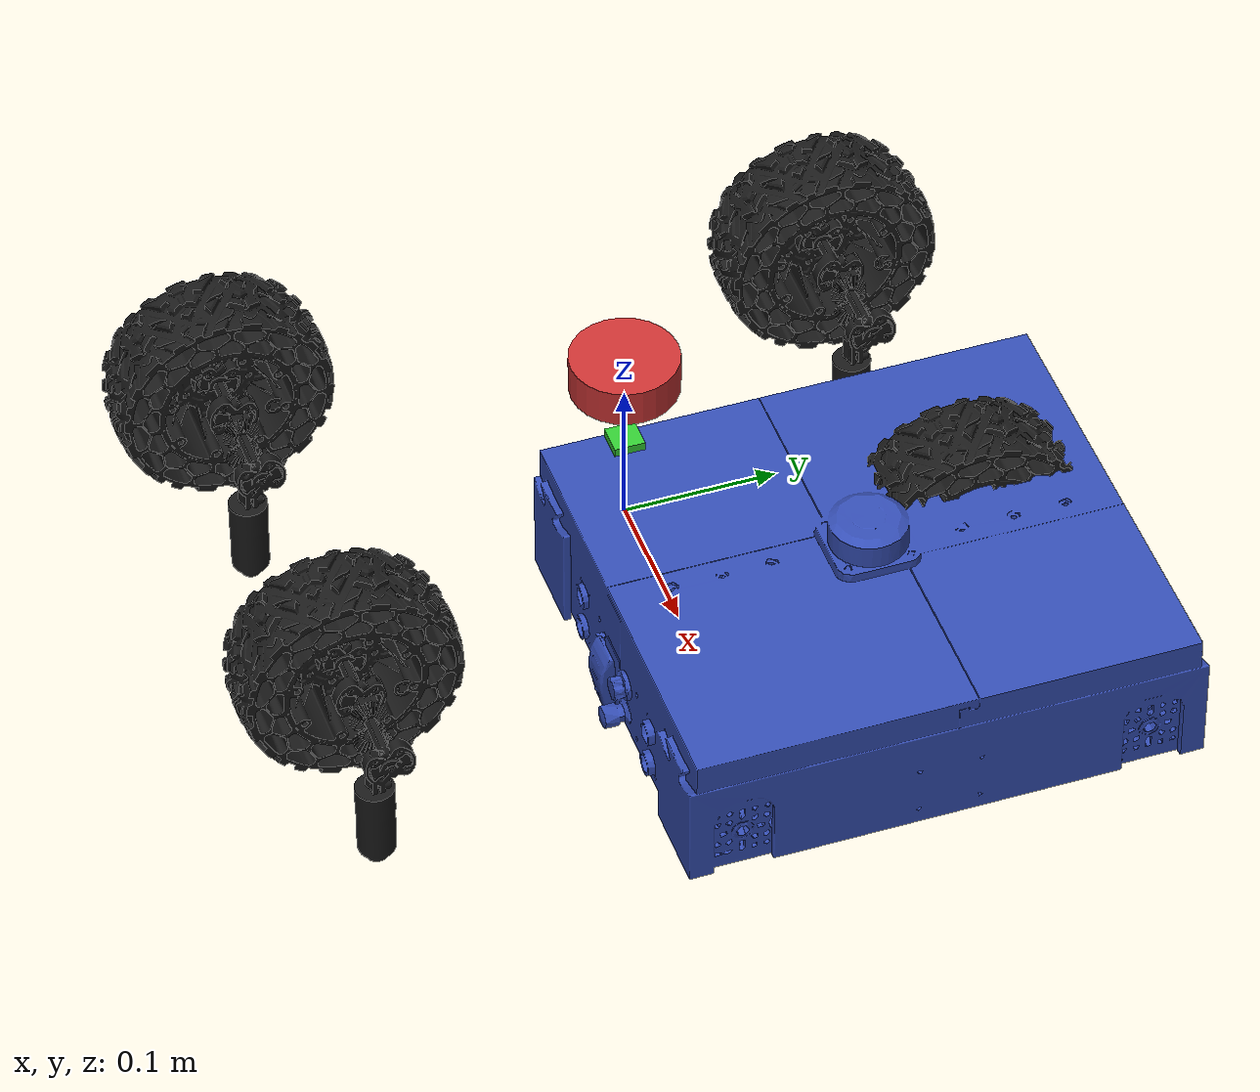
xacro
<?xml version="1.0"?>
<robot name="star" xmlns:xacro="http://www.ros.org/wiki/xacro">

  <!-- Properties                                                          -->
  <xacro:property name="chassis_length" value="0.346"/>
  <xacro:property name="chassis_width" value="0.292"/>
  <xacro:property name="chassis_height" value="0.118"/>
  <xacro:property name="chassis_mass" value="4.2"/>

  <xacro:property name="wheel_radius" value="0.072"/>
  <xacro:property name="wheel_width" value="0.052"/>
  <xacro:property name="wheel_mass" value="0.348"/>

  <!-- Half track width: center of left wheel to center of right wheel -->
  <xacro:property name="track_half" value="0.178"/>
  <!-- Wheel Y offset: half track + half wheel width (wheel outside chassis) -->
  <xacro:property name="wheel_y_offset" value="0.204"/>
  <!-- Front/back wheel X offset from base_link center (half of 264mm wheelbase) -->
  <xacro:property name="wheel_x_offset" value="0.132"/>

  <!-- base_link sits at wheel axle height. Chassis center is above axle. -->
  <xacro:property name="chassis_z_offset" value="${chassis_height / 2}"/>

  <!-- Inertia macros                                                      -->
  <xacro:macro name="box_inertia" params="m x y z">
    <inertial>
      <mass value="${m}"/>
      <inertia ixx="${m * (y*y + z*z) / 12}" ixy="0" ixz="0"
               iyy="${m * (x*x + z*z) / 12}" iyz="0"
               izz="${m * (x*x + y*y) / 12}"/>
    </inertial>
  </xacro:macro>

  <xacro:macro name="cylinder_inertia" params="m r h">
    <inertial>
      <mass value="${m}"/>
      <inertia ixx="${m * (3*r*r + h*h) / 12}" ixy="0" ixz="0"
               iyy="${m * (3*r*r + h*h) / 12}" iyz="0"
               izz="${m * r*r / 2}"/>
    </inertial>
  </xacro:macro>

  <!-- Wheel macro                                                         -->
  <xacro:macro name="wheel" params="prefix x_offset y_offset">
    <joint name="${prefix}_wheel_joint" type="continuous">
      <parent link="base_link"/>
      <child link="${prefix}_wheel_link"/>
      <origin xyz="${x_offset} ${y_offset} 0" rpy="${-pi/2} 0 0"/>
      <axis xyz="0 0 1"/>
      <dynamics damping="0.1" friction="0.1"/>
    </joint>

    <link name="${prefix}_wheel_link">
      <xacro:cylinder_inertia m="${wheel_mass}" r="${wheel_radius}" h="${wheel_width}"/>
      <visual>
        <geometry>
          <!-- STL exports are in millimeters; URDF distances are in meters. -->
          <mesh filename="package://star_simulation/meshes/wheel_visual.stl"
                scale="0.001 0.001 0.001"/>
        </geometry>
        <material name="wheel_black">
          <color rgba="0.1 0.1 0.1 1"/>
        </material>
      </visual>
      <collision>
        <geometry>
          <mesh filename="package://star_simulation/meshes/wheel_collision.stl"
                scale="0.001 0.001 0.001"/>
        </geometry>
      </collision>
    </link>
  </xacro:macro>

  <!-- Base link: chassis body                                             -->
  <link name="base_link">
    <xacro:box_inertia m="${chassis_mass}"
                       x="${chassis_length}"
                       y="${chassis_width}"
                       z="${chassis_height}"/>
    <visual>
      <geometry>
        <!-- STL exports are in millimeters; URDF distances are in meters. -->
        <mesh filename="package://star_simulation/meshes/chassis_visual.stl"
              scale="0.001 0.001 0.001"/>
      </geometry>
      <material name="chassis_blue">
        <color rgba="0.2 0.3 0.7 1"/>
      </material>
    </visual>
    <collision>
      <geometry>
        <mesh filename="package://star_simulation/meshes/chassis_collision.stl"
              scale="0.001 0.001 0.001"/>
      </geometry>
    </collision>
  </link>

  <!-- Four wheels                                                         -->
  <xacro:wheel prefix="front_left"  x_offset="${wheel_x_offset}"  y_offset="${wheel_y_offset}"/>
  <xacro:wheel prefix="front_right" x_offset="${wheel_x_offset}"  y_offset="${-wheel_y_offset}"/>
  <xacro:wheel prefix="back_left"   x_offset="${-wheel_x_offset}" y_offset="${wheel_y_offset}"/>
  <xacro:wheel prefix="back_right"  x_offset="${-wheel_x_offset}" y_offset="${-wheel_y_offset}"/>

  <!-- RPLiDAR C1: mounted 5 cm above base_link center                     -->
  <!-- (same transform as star_bringup/urdf/star.urdf.xacro)               -->
  <joint name="base_to_laser" type="fixed">
    <parent link="base_link"/>
    <child link="laser_frame"/>
    <origin xyz="0.0 0.0 0.05" rpy="0 0 0"/>
  </joint>

  <link name="laser_frame">
    <inertial>
      <mass value="0.05"/>
      <inertia ixx="0.00001" ixy="0" ixz="0"
               iyy="0.00001" iyz="0"
               izz="0.00001"/>
    </inertial>
    <visual>
      <origin xyz="0 0 ${chassis_height / 2 + 0.01}" rpy="0 0 0"/>
      <geometry>
        <cylinder radius="0.035" length="0.025"/>
      </geometry>
      <material name="lidar_red">
        <color rgba="0.8 0.2 0.2 1"/>
      </material>
    </visual>
  </link>

  <!-- IMU: co-located with base_link (on-board, at robot center)          -->
  <!-- (same transform as star_bringup/urdf/star.urdf.xacro)               -->
  <joint name="base_to_imu" type="fixed">
    <parent link="base_link"/>
    <child link="imu_link"/>
    <origin xyz="0.0 0.0 0.0" rpy="0 0 0"/>
  </joint>

  <link name="imu_link">
    <inertial>
      <mass value="0.01"/>
      <inertia ixx="0.000001" ixy="0" ixz="0"
               iyy="0.000001" iyz="0"
               izz="0.000001"/>
    </inertial>
    <visual>
      <origin xyz="0 0 ${chassis_z_offset}" rpy="0 0 0"/>
      <geometry>
        <box size="0.02 0.02 0.01"/>
      </geometry>
      <material name="imu_green">
        <color rgba="0.2 0.8 0.2 1"/>
      </material>
    </visual>
  </link>

  <!-- HC-SR04 ultrasonic sonar mounts (4x, at chassis corners)            -->
  <!-- Facing outward: front_left/right forward, back_left/right backward  -->
  <xacro:macro name="sonar_mount" params="name x y yaw">
    <joint name="base_to_${name}_sonar" type="fixed">
      <parent link="base_link"/>
      <child link="${name}_sonar_link"/>
      <origin xyz="${x} ${y} ${chassis_z_offset}" rpy="0 0 ${yaw}"/>
    </joint>
    <link name="${name}_sonar_link">
      <inertial>
        <mass value="0.005"/>
        <inertia ixx="0.000001" ixy="0" ixz="0"
                 iyy="0.000001" iyz="0"
                 izz="0.000001"/>
      </inertial>
    </link>
  </xacro:macro>

  <!-- Front sonars face forward (yaw=0), back sonars face backward (yaw=pi) -->
  <xacro:sonar_mount name="front_left"  x="${chassis_length/2}"  y="${chassis_width/2}"  yaw="0"/>
  <xacro:sonar_mount name="front_right" x="${chassis_length/2}"  y="${-chassis_width/2}" yaw="0"/>
  <xacro:sonar_mount name="back_left"   x="${-chassis_length/2}" y="${chassis_width/2}"  yaw="${pi}"/>
  <xacro:sonar_mount name="back_right"  x="${-chassis_length/2}" y="${-chassis_width/2}" yaw="${pi}"/>

  <!-- Gazebo Harmonic plugins (DiffDrive, sensors, friction)              -->
  <xacro:include filename="$(find star_simulation)/urdf/star_gazebo.xacro"/>

</robot>
